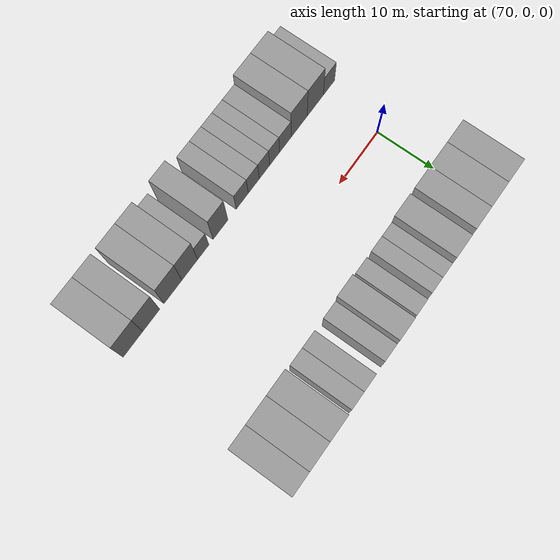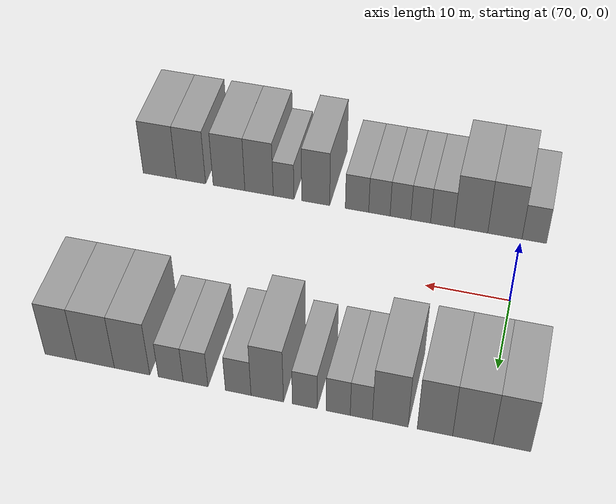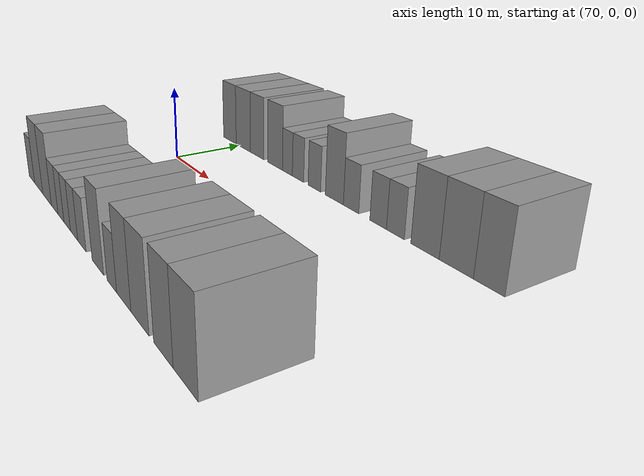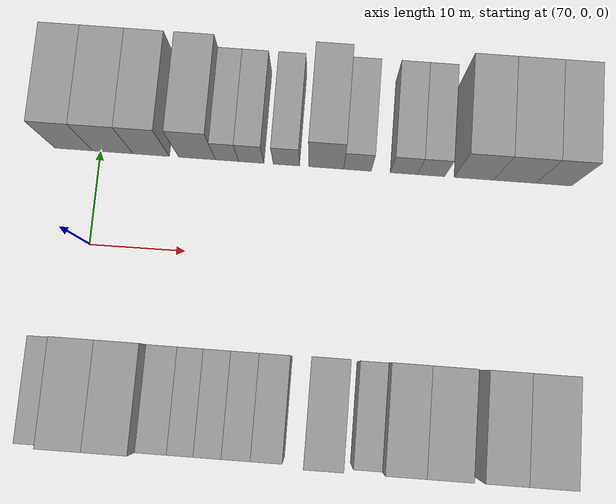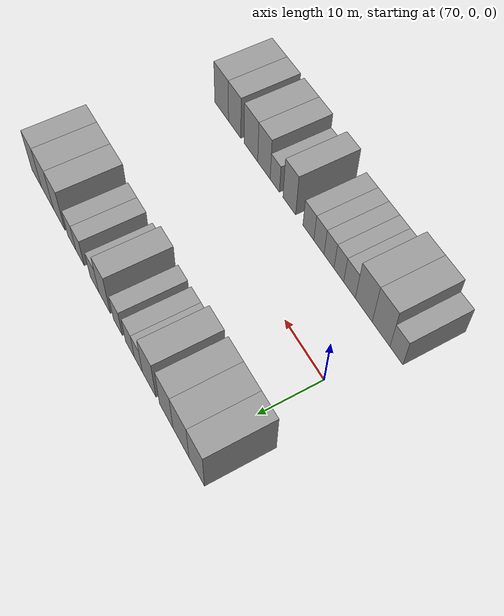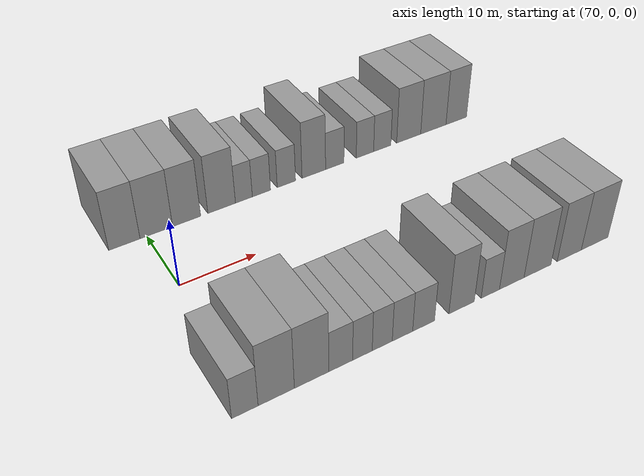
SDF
<sdf version="1.6">
 <world name="default">
  <model name="building_14">
   <static>1</static>
   <pose>67.1182 15.0000 0 0.000000 0.000000 1.570796</pose>
   <link name="link">
    <pose>0 0 4.50 0 0 0</pose>
    <collision name="collision"><geometry><box><size>10.0000 4.0417 9.0000</size></box></geometry></collision>
    <visual name="visual">
     <cast_shadows>0</cast_shadows>
     <geometry><box><size>10.0000 4.0417 9.0000</size></box></geometry>
     <material>
      <script>
       <uri>model://grey_wall/materials/scripts</uri>
       <uri>model://grey_wall/materials/textures</uri>
       <name>vrc/grey_wall</name>
      </script>
     </material>
    </visual>
   </link>
  </model>
  <model name="building_15">
   <static>1</static>
   <pose>71.3008 15.0000 0 0.000000 0.000000 1.570796</pose>
   <link name="link">
    <pose>0 0 4.50 0 0 0</pose>
    <collision name="collision"><geometry><box><size>10.0000 4.3233 9.0000</size></box></geometry></collision>
    <visual name="visual">
     <cast_shadows>0</cast_shadows>
     <geometry><box><size>10.0000 4.3233 9.0000</size></box></geometry>
     <material>
      <script>
       <uri>model://grey_wall/materials/scripts</uri>
       <uri>model://grey_wall/materials/textures</uri>
       <name>vrc/grey_wall</name>
      </script>
     </material>
    </visual>
   </link>
  </model>
  <model name="building_16">
   <static>1</static>
   <pose>75.3823 15.0000 0 0.000000 0.000000 1.570796</pose>
   <link name="link">
    <pose>0 0 4.50 0 0 0</pose>
    <collision name="collision"><geometry><box><size>10.0000 3.8398 9.0000</size></box></geometry></collision>
    <visual name="visual">
     <cast_shadows>0</cast_shadows>
     <geometry><box><size>10.0000 3.8398 9.0000</size></box></geometry>
     <material>
      <script>
       <uri>model://grey_wall/materials/scripts</uri>
       <uri>model://grey_wall/materials/textures</uri>
       <name>vrc/grey_wall</name>
      </script>
     </material>
    </visual>
   </link>
  </model>
  <model name="building_17">
   <static>1</static>
   <pose>80.2570 15.0000 0 0.000000 0.000000 1.570796</pose>
   <link name="link">
    <pose>0 0 4.50 0 0 0</pose>
    <collision name="collision"><geometry><box><size>10.0000 3.9096 9.0000</size></box></geometry></collision>
    <visual name="visual">
     <cast_shadows>0</cast_shadows>
     <geometry><box><size>10.0000 3.9096 9.0000</size></box></geometry>
     <material>
      <script>
       <uri>model://grey_wall/materials/scripts</uri>
       <uri>model://grey_wall/materials/textures</uri>
       <name>vrc/grey_wall</name>
      </script>
     </material>
    </visual>
   </link>
  </model>
  <model name="building_18">
   <static>1</static>
   <pose>83.4359 15.0000 0 0.000000 0.000000 1.570796</pose>
   <link name="link">
    <pose>0 0 3.00 0 0 0</pose>
    <collision name="collision"><geometry><box><size>10.0000 2.4482 6.0000</size></box></geometry></collision>
    <visual name="visual">
     <cast_shadows>0</cast_shadows>
     <geometry><box><size>10.0000 2.4482 6.0000</size></box></geometry>
     <material>
      <script>
       <uri>model://grey_wall/materials/scripts</uri>
       <uri>model://grey_wall/materials/textures</uri>
       <name>vrc/grey_wall</name>
      </script>
     </material>
    </visual>
   </link>
  </model>
  <model name="building_19">
   <static>1</static>
   <pose>86.0006 15.0000 0 0.000000 0.000000 1.570796</pose>
   <link name="link">
    <pose>0 0 3.00 0 0 0</pose>
    <collision name="collision"><geometry><box><size>10.0000 2.6813 6.0000</size></box></geometry></collision>
    <visual name="visual">
     <cast_shadows>0</cast_shadows>
     <geometry><box><size>10.0000 2.6813 6.0000</size></box></geometry>
     <material>
      <script>
       <uri>model://grey_wall/materials/scripts</uri>
       <uri>model://grey_wall/materials/textures</uri>
       <name>vrc/grey_wall</name>
      </script>
     </material>
    </visual>
   </link>
  </model>
  <model name="building_20">
   <static>1</static>
   <pose>89.7267 15.0000 0 0.000000 0.000000 1.570796</pose>
   <link name="link">
    <pose>0 0 3.00 0 0 0</pose>
    <collision name="collision"><geometry><box><size>10.0000 2.7710 6.0000</size></box></geometry></collision>
    <visual name="visual">
     <cast_shadows>0</cast_shadows>
     <geometry><box><size>10.0000 2.7710 6.0000</size></box></geometry>
     <material>
      <script>
       <uri>model://grey_wall/materials/scripts</uri>
       <uri>model://grey_wall/materials/textures</uri>
       <name>vrc/grey_wall</name>
      </script>
     </material>
    </visual>
   </link>
  </model>
  <model name="building_21">
   <static>1</static>
   <pose>93.9495 15.0000 0 0.000000 0.000000 1.570796</pose>
   <link name="link">
    <pose>0 0 4.50 0 0 0</pose>
    <collision name="collision"><geometry><box><size>10.0000 3.6744 9.0000</size></box></geometry></collision>
    <visual name="visual">
     <cast_shadows>0</cast_shadows>
     <geometry><box><size>10.0000 3.6744 9.0000</size></box></geometry>
     <material>
      <script>
       <uri>model://grey_wall/materials/scripts</uri>
       <uri>model://grey_wall/materials/textures</uri>
       <name>vrc/grey_wall</name>
      </script>
     </material>
    </visual>
   </link>
  </model>
  <model name="building_22">
   <static>1</static>
   <pose>97.2493 15.0000 0 0.000000 0.000000 1.570796</pose>
   <link name="link">
    <pose>0 0 3.00 0 0 0</pose>
    <collision name="collision"><geometry><box><size>10.0000 2.9253 6.0000</size></box></geometry></collision>
    <visual name="visual">
     <cast_shadows>0</cast_shadows>
     <geometry><box><size>10.0000 2.9253 6.0000</size></box></geometry>
     <material>
      <script>
       <uri>model://grey_wall/materials/scripts</uri>
       <uri>model://grey_wall/materials/textures</uri>
       <name>vrc/grey_wall</name>
      </script>
     </material>
    </visual>
   </link>
  </model>
  <model name="building_23">
   <static>1</static>
   <pose>102.1418 15.0000 0 0.000000 0.000000 1.570796</pose>
   <link name="link">
    <pose>0 0 3.00 0 0 0</pose>
    <collision name="collision"><geometry><box><size>10.0000 2.8597 6.0000</size></box></geometry></collision>
    <visual name="visual">
     <cast_shadows>0</cast_shadows>
     <geometry><box><size>10.0000 2.8597 6.0000</size></box></geometry>
     <material>
      <script>
       <uri>model://grey_wall/materials/scripts</uri>
       <uri>model://grey_wall/materials/textures</uri>
       <name>vrc/grey_wall</name>
      </script>
     </material>
    </visual>
   </link>
  </model>
  <model name="building_24">
   <static>1</static>
   <pose>105.0148 15.0000 0 0.000000 0.000000 1.570796</pose>
   <link name="link">
    <pose>0 0 3.00 0 0 0</pose>
    <collision name="collision"><geometry><box><size>10.0000 2.8864 6.0000</size></box></geometry></collision>
    <visual name="visual">
     <cast_shadows>0</cast_shadows>
     <geometry><box><size>10.0000 2.8864 6.0000</size></box></geometry>
     <material>
      <script>
       <uri>model://grey_wall/materials/scripts</uri>
       <uri>model://grey_wall/materials/textures</uri>
       <name>vrc/grey_wall</name>
      </script>
     </material>
    </visual>
   </link>
  </model>
  <model name="building_25">
   <static>1</static>
   <pose>109.5327 15.0000 0 0.000000 0.000000 1.570796</pose>
   <link name="link">
    <pose>0 0 4.50 0 0 0</pose>
    <collision name="collision"><geometry><box><size>10.0000 4.1493 9.0000</size></box></geometry></collision>
    <visual name="visual">
     <cast_shadows>0</cast_shadows>
     <geometry><box><size>10.0000 4.1493 9.0000</size></box></geometry>
     <material>
      <script>
       <uri>model://grey_wall/materials/scripts</uri>
       <uri>model://grey_wall/materials/textures</uri>
       <name>vrc/grey_wall</name>
      </script>
     </material>
    </visual>
   </link>
  </model>
  <model name="building_26">
   <static>1</static>
   <pose>113.8534 15.0000 0 0.000000 0.000000 1.570796</pose>
   <link name="link">
    <pose>0 0 4.50 0 0 0</pose>
    <collision name="collision"><geometry><box><size>10.0000 4.4923 9.0000</size></box></geometry></collision>
    <visual name="visual">
     <cast_shadows>0</cast_shadows>
     <geometry><box><size>10.0000 4.4923 9.0000</size></box></geometry>
     <material>
      <script>
       <uri>model://grey_wall/materials/scripts</uri>
       <uri>model://grey_wall/materials/textures</uri>
       <name>vrc/grey_wall</name>
      </script>
     </material>
    </visual>
   </link>
  </model>
  <model name="building_27">
   <static>1</static>
   <pose>117.9723 15.0000 0 0.000000 0.000000 1.570796</pose>
   <link name="link">
    <pose>0 0 4.50 0 0 0</pose>
    <collision name="collision"><geometry><box><size>10.0000 3.7454 9.0000</size></box></geometry></collision>
    <visual name="visual">
     <cast_shadows>0</cast_shadows>
     <geometry><box><size>10.0000 3.7454 9.0000</size></box></geometry>
     <material>
      <script>
       <uri>model://grey_wall/materials/scripts</uri>
       <uri>model://grey_wall/materials/textures</uri>
       <name>vrc/grey_wall</name>
      </script>
     </material>
    </visual>
   </link>
  </model>
  <model name="building_68">
   <static>1</static>
   <pose>68.3799 -15.0000 0 0.000000 0.000000 1.570796</pose>
   <link name="link">
    <pose>0 0 3.00 0 0 0</pose>
    <collision name="collision"><geometry><box><size>10.0000 2.9834 6.0000</size></box></geometry></collision>
    <visual name="visual">
     <cast_shadows>0</cast_shadows>
     <geometry><box><size>10.0000 2.9834 6.0000</size></box></geometry>
     <material>
      <script>
       <uri>model://grey_wall/materials/scripts</uri>
       <uri>model://grey_wall/materials/textures</uri>
       <name>vrc/grey_wall</name>
      </script>
     </material>
    </visual>
   </link>
  </model>
  <model name="building_69">
   <static>1</static>
   <pose>71.9738 -15.0000 0 0.000000 0.000000 1.570796</pose>
   <link name="link">
    <pose>0 0 4.50 0 0 0</pose>
    <collision name="collision"><geometry><box><size>10.0000 4.2044 9.0000</size></box></geometry></collision>
    <visual name="visual">
     <cast_shadows>0</cast_shadows>
     <geometry><box><size>10.0000 4.2044 9.0000</size></box></geometry>
     <material>
      <script>
       <uri>model://grey_wall/materials/scripts</uri>
       <uri>model://grey_wall/materials/textures</uri>
       <name>vrc/grey_wall</name>
      </script>
     </material>
    </visual>
   </link>
  </model>
  <model name="building_70">
   <static>1</static>
   <pose>76.1509 -15.0000 0 0.000000 0.000000 1.570796</pose>
   <link name="link">
    <pose>0 0 4.50 0 0 0</pose>
    <collision name="collision"><geometry><box><size>10.0000 4.1498 9.0000</size></box></geometry></collision>
    <visual name="visual">
     <cast_shadows>0</cast_shadows>
     <geometry><box><size>10.0000 4.1498 9.0000</size></box></geometry>
     <material>
      <script>
       <uri>model://grey_wall/materials/scripts</uri>
       <uri>model://grey_wall/materials/textures</uri>
       <name>vrc/grey_wall</name>
      </script>
     </material>
    </visual>
   </link>
  </model>
  <model name="building_71">
   <static>1</static>
   <pose>79.6998 -15.0000 0 0.000000 0.000000 1.570796</pose>
   <link name="link">
    <pose>0 0 3.00 0 0 0</pose>
    <collision name="collision"><geometry><box><size>10.0000 2.9479 6.0000</size></box></geometry></collision>
    <visual name="visual">
     <cast_shadows>0</cast_shadows>
     <geometry><box><size>10.0000 2.9479 6.0000</size></box></geometry>
     <material>
      <script>
       <uri>model://grey_wall/materials/scripts</uri>
       <uri>model://grey_wall/materials/textures</uri>
       <name>vrc/grey_wall</name>
      </script>
     </material>
    </visual>
   </link>
  </model>
  <model name="building_72">
   <static>1</static>
   <pose>82.4166 -15.0000 0 0.000000 0.000000 1.570796</pose>
   <link name="link">
    <pose>0 0 3.00 0 0 0</pose>
    <collision name="collision"><geometry><box><size>10.0000 2.4856 6.0000</size></box></geometry></collision>
    <visual name="visual">
     <cast_shadows>0</cast_shadows>
     <geometry><box><size>10.0000 2.4856 6.0000</size></box></geometry>
     <material>
      <script>
       <uri>model://grey_wall/materials/scripts</uri>
       <uri>model://grey_wall/materials/textures</uri>
       <name>vrc/grey_wall</name>
      </script>
     </material>
    </visual>
   </link>
  </model>
  <model name="building_73">
   <static>1</static>
   <pose>84.9606 -15.0000 0 0.000000 0.000000 1.570796</pose>
   <link name="link">
    <pose>0 0 3.00 0 0 0</pose>
    <collision name="collision"><geometry><box><size>10.0000 2.6024 6.0000</size></box></geometry></collision>
    <visual name="visual">
     <cast_shadows>0</cast_shadows>
     <geometry><box><size>10.0000 2.6024 6.0000</size></box></geometry>
     <material>
      <script>
       <uri>model://grey_wall/materials/scripts</uri>
       <uri>model://grey_wall/materials/textures</uri>
       <name>vrc/grey_wall</name>
      </script>
     </material>
    </visual>
   </link>
  </model>
  <model name="building_74">
   <static>1</static>
   <pose>87.6168 -15.0000 0 0.000000 0.000000 1.570796</pose>
   <link name="link">
    <pose>0 0 3.00 0 0 0</pose>
    <collision name="collision"><geometry><box><size>10.0000 2.7101 6.0000</size></box></geometry></collision>
    <visual name="visual">
     <cast_shadows>0</cast_shadows>
     <geometry><box><size>10.0000 2.7101 6.0000</size></box></geometry>
     <material>
      <script>
       <uri>model://grey_wall/materials/scripts</uri>
       <uri>model://grey_wall/materials/textures</uri>
       <name>vrc/grey_wall</name>
      </script>
     </material>
    </visual>
   </link>
  </model>
  <model name="building_75">
   <static>1</static>
   <pose>90.4583 -15.0000 0 0.000000 0.000000 1.570796</pose>
   <link name="link">
    <pose>0 0 3.00 0 0 0</pose>
    <collision name="collision"><geometry><box><size>10.0000 2.9728 6.0000</size></box></geometry></collision>
    <visual name="visual">
     <cast_shadows>0</cast_shadows>
     <geometry><box><size>10.0000 2.9728 6.0000</size></box></geometry>
     <material>
      <script>
       <uri>model://grey_wall/materials/scripts</uri>
       <uri>model://grey_wall/materials/textures</uri>
       <name>vrc/grey_wall</name>
      </script>
     </material>
    </visual>
   </link>
  </model>
  <model name="building_76">
   <static>1</static>
   <pose>95.7457 -15.0000 0 0.000000 0.000000 1.570796</pose>
   <link name="link">
    <pose>0 0 4.50 0 0 0</pose>
    <collision name="collision"><geometry><box><size>10.0000 3.6021 9.0000</size></box></geometry></collision>
    <visual name="visual">
     <cast_shadows>0</cast_shadows>
     <geometry><box><size>10.0000 3.6021 9.0000</size></box></geometry>
     <material>
      <script>
       <uri>model://grey_wall/materials/scripts</uri>
       <uri>model://grey_wall/materials/textures</uri>
       <name>vrc/grey_wall</name>
      </script>
     </material>
    </visual>
   </link>
  </model>
  <model name="building_77">
   <static>1</static>
   <pose>99.8922 -15.0000 0 0.000000 0.000000 1.570796</pose>
   <link name="link">
    <pose>0 0 3.00 0 0 0</pose>
    <collision name="collision"><geometry><box><size>10.0000 2.6910 6.0000</size></box></geometry></collision>
    <visual name="visual">
     <cast_shadows>0</cast_shadows>
     <geometry><box><size>10.0000 2.6910 6.0000</size></box></geometry>
     <material>
      <script>
       <uri>model://grey_wall/materials/scripts</uri>
       <uri>model://grey_wall/materials/textures</uri>
       <name>vrc/grey_wall</name>
      </script>
     </material>
    </visual>
   </link>
  </model>
  <model name="building_78">
   <static>1</static>
   <pose>103.0902 -15.0000 0 0.000000 0.000000 1.570796</pose>
   <link name="link">
    <pose>0 0 4.50 0 0 0</pose>
    <collision name="collision"><geometry><box><size>10.0000 3.7051 9.0000</size></box></geometry></collision>
    <visual name="visual">
     <cast_shadows>0</cast_shadows>
     <geometry><box><size>10.0000 3.7051 9.0000</size></box></geometry>
     <material>
      <script>
       <uri>model://grey_wall/materials/scripts</uri>
       <uri>model://grey_wall/materials/textures</uri>
       <name>vrc/grey_wall</name>
      </script>
     </material>
    </visual>
   </link>
  </model>
  <model name="building_79">
   <static>1</static>
   <pose>107.0325 -15.0000 0 0.000000 0.000000 1.570796</pose>
   <link name="link">
    <pose>0 0 4.50 0 0 0</pose>
    <collision name="collision"><geometry><box><size>10.0000 4.1794 9.0000</size></box></geometry></collision>
    <visual name="visual">
     <cast_shadows>0</cast_shadows>
     <geometry><box><size>10.0000 4.1794 9.0000</size></box></geometry>
     <material>
      <script>
       <uri>model://grey_wall/materials/scripts</uri>
       <uri>model://grey_wall/materials/textures</uri>
       <name>vrc/grey_wall</name>
      </script>
     </material>
    </visual>
   </link>
  </model>
  <model name="building_80">
   <static>1</static>
   <pose>112.0677 -15.0000 0 0.000000 0.000000 1.570796</pose>
   <link name="link">
    <pose>0 0 4.50 0 0 0</pose>
    <collision name="collision"><geometry><box><size>10.0000 3.8910 9.0000</size></box></geometry></collision>
    <visual name="visual">
     <cast_shadows>0</cast_shadows>
     <geometry><box><size>10.0000 3.8910 9.0000</size></box></geometry>
     <material>
      <script>
       <uri>model://grey_wall/materials/scripts</uri>
       <uri>model://grey_wall/materials/textures</uri>
       <name>vrc/grey_wall</name>
      </script>
     </material>
    </visual>
   </link>
  </model>
  <model name="building_81">
   <static>1</static>
   <pose>116.2319 -15.0000 0 0.000000 0.000000 1.570796</pose>
   <link name="link">
    <pose>0 0 4.50 0 0 0</pose>
    <collision name="collision"><geometry><box><size>10.0000 4.4374 9.0000</size></box></geometry></collision>
    <visual name="visual">
     <cast_shadows>0</cast_shadows>
     <geometry><box><size>10.0000 4.4374 9.0000</size></box></geometry>
     <material>
      <script>
       <uri>model://grey_wall/materials/scripts</uri>
       <uri>model://grey_wall/materials/textures</uri>
       <name>vrc/grey_wall</name>
      </script>
     </material>
    </visual>
   </link>
  </model>
 </world>
</sdf>
